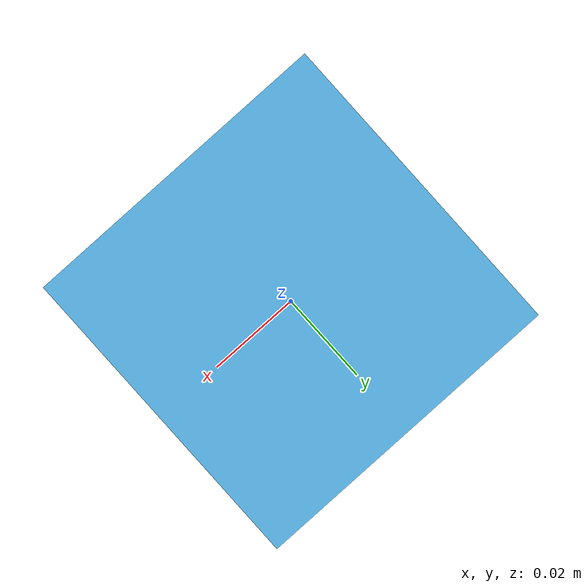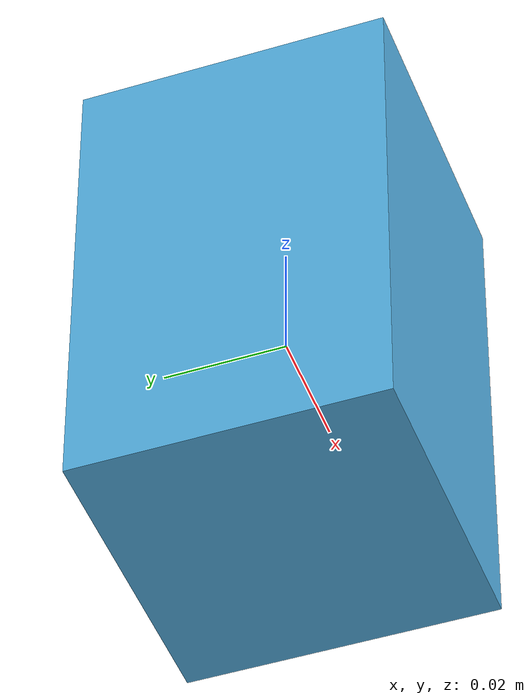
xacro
<?xml version="1.0"?>
<robot name="camera" xmlns:xacro="http://www.ros.org/wiki/xacro">

<!--                          PROPERTY LIST                         -->
<!-- Camera's dimensions -->
<xacro:property name="body_len_x" value="0.080" />
<xacro:property name="body_len_y" value="0.050" />
<xacro:property name="body_len_z" value="0.050" />

<!-- Camera's pose -->
<xacro:property name="pos_x" value="0" />
<xacro:property name="pos_y" value="0" />
<xacro:property name="pos_z" value="0" />
<xacro:property name="roll_x" value="0" />
<xacro:property name="pitch_y" value="${pi/2}" />
<xacro:property name="yaw_z" value="0" />

<!-- Virtual link -->
<link name="world"/>

<!-- Camera -->
<link name="camera_frame">
	<visual>
		<origin xyz="0 0 0" rpy="0 0 0" />
		<geometry>
	    	<box size="${body_len_x} ${body_len_y} ${body_len_z}"/>
		</geometry>
	</visual>
	<collision>
		<origin xyz="0 0 0" rpy="0 0 0"/>
		<geometry>
			<box size="${body_len_x} ${body_len_y} ${body_len_z}"/>
		</geometry>
	</collision>
    <inertial>
    	<mass value="1" />
    	<origin xyz="0 0 0" rpy="0 0 0"/>
    	<inertia ixx="1" ixy="0" ixz="0" iyy="1" iyz="0" izz="1" />
    </inertial>
</link>

<joint name="world_to_camera_frame" type="fixed">
	<axis xyz="0 0 0" />
	<origin xyz="${pos_x} ${pos_y} ${pos_z}" rpy="${roll_x} ${pitch_y} ${yaw_z}"/>
	<parent link="world"/>
	<child link="camera_frame"/>
</joint>

<gazebo reference="camera_frame">
<sensor type="camera" name="camera0">
	<update_rate>30.0</update_rate>
	<camera name="head">
	<horizontal_fov>1.3962634</horizontal_fov>
	<image>
		<width>800</width>
		<height>800</height>
		<format>R8G8B8</format>
	</image>
	<clip>
		<near>0.02</near>
		<far>300</far>
	</clip>
	<noise>
	 	<type>gaussian</type>
		<!-- Noise is sampled independently per pixel on each frame.
		   That pixel's noise value is added to each of its color
		   channels, which at that point lie in the range [0,1]. -->
		<mean>0.0</mean>
		<stddev>0.007</stddev>
	</noise>
	</camera>
	<plugin name="camera_controller" filename="libgazebo_ros_camera.so">
	<alwaysOn>true</alwaysOn>
	<updateRate>0.0</updateRate>
	<cameraName>/</cameraName>
	<imageTopicName>image_raw</imageTopicName>
	<cameraInfoTopicName>camera_info</cameraInfoTopicName>
	<frameName>camera_frame</frameName>
	<hackBaseline>0.07</hackBaseline>
	<distortionK1>0.0</distortionK1>
	<distortionK2>0.0</distortionK2>
	<distortionK3>0.0</distortionK3>
	<distortionT1>0.0</distortionT1>
	<distortionT2>0.0</distortionT2>
	</plugin>
	</sensor>
</gazebo>

</robot>
